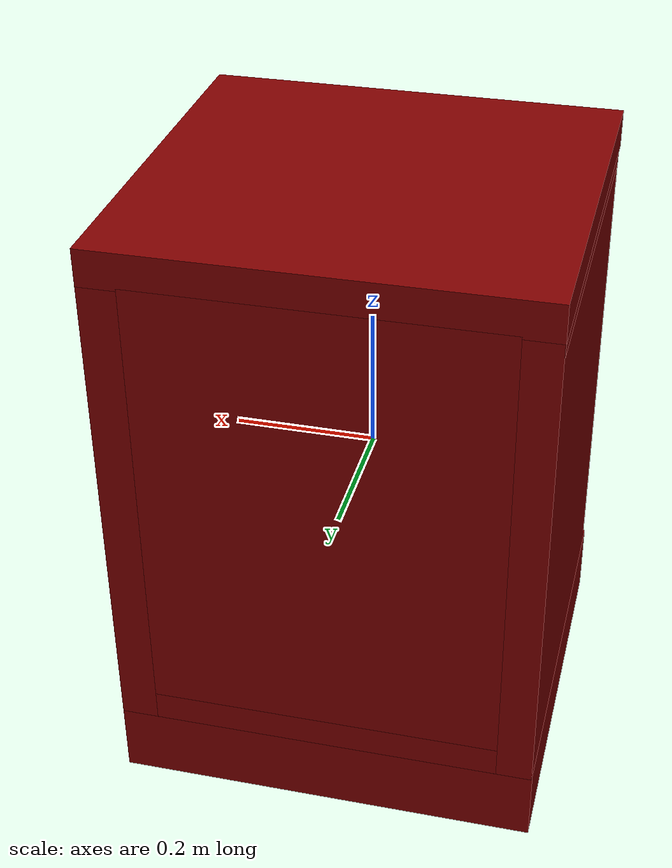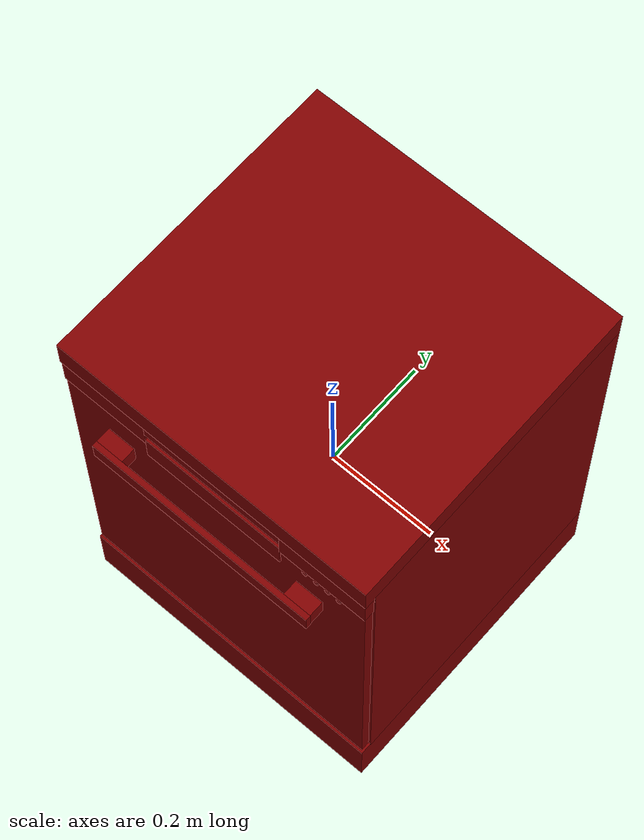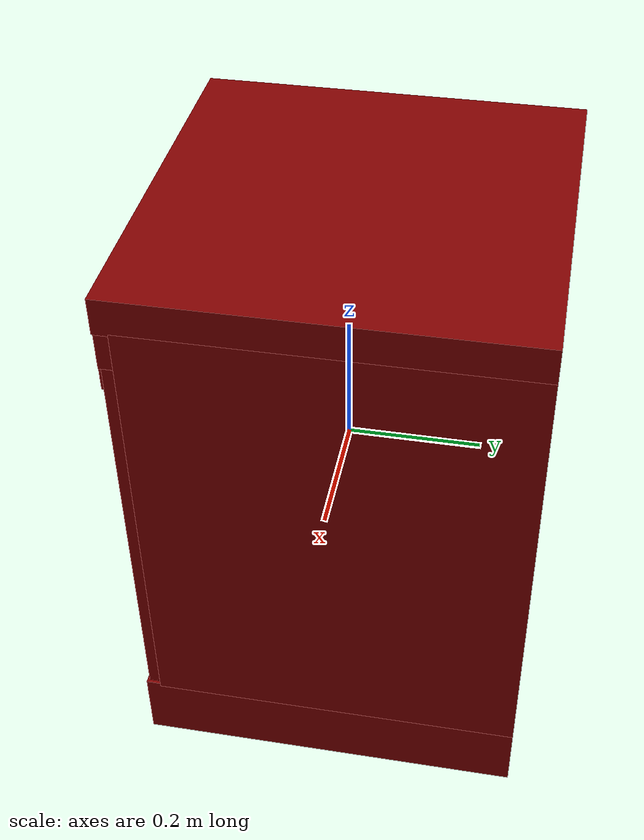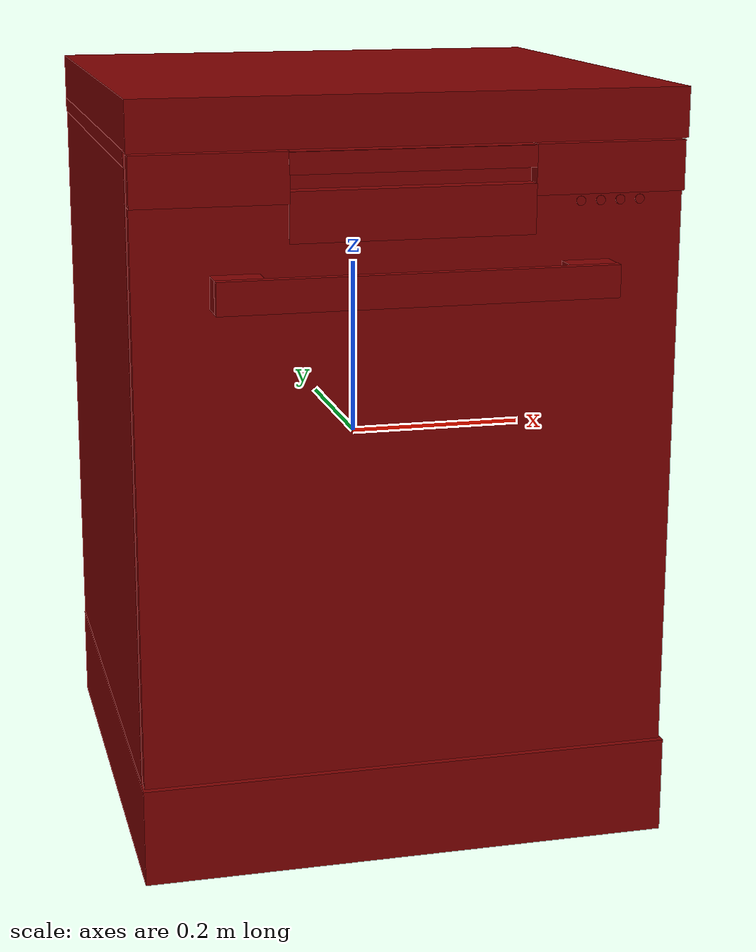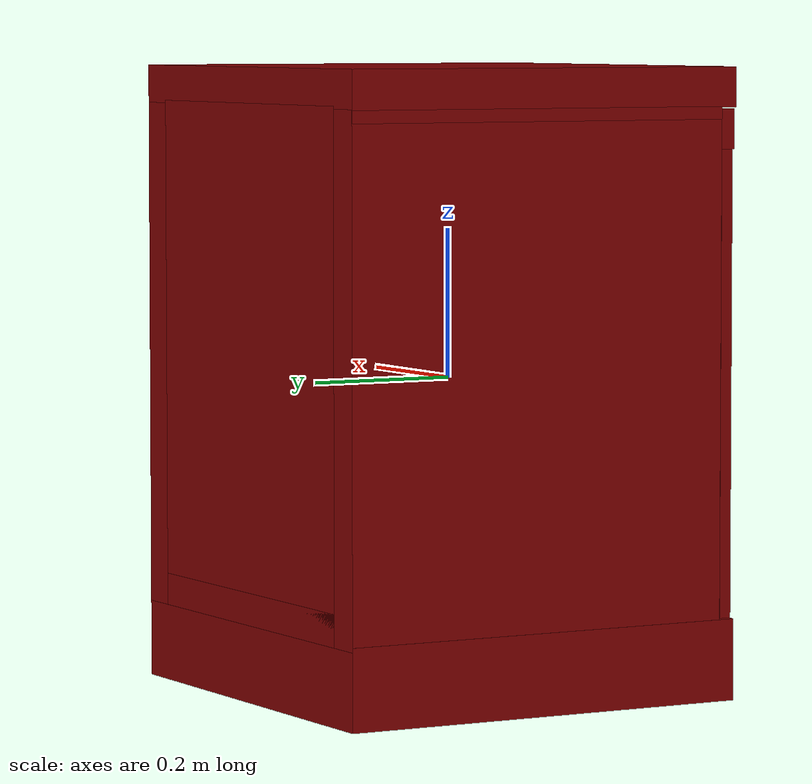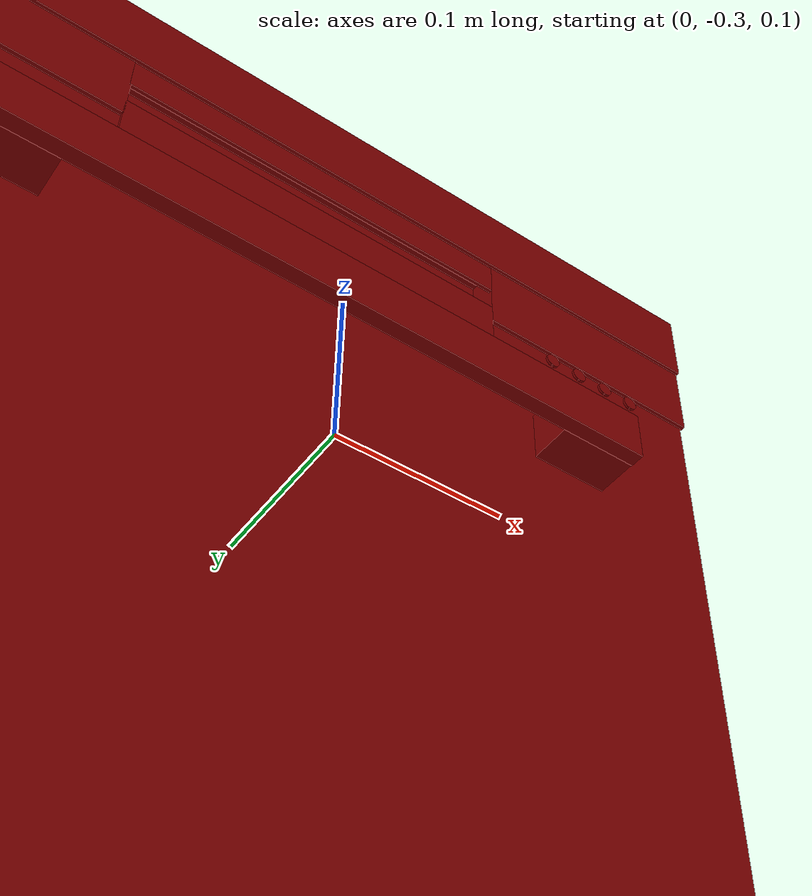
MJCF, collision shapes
<mujoco model="model">
  <compiler angle="radian"/>
  <asset>
    <mesh file="visuals/Body001.obj" name="Body001_vis"/>
    <mesh file="visuals/Button001.obj" name="Button001_vis"/>
    <mesh file="visuals/Button002.obj" name="Button002_vis"/>
    <mesh file="visuals/Button003.obj" name="Button003_vis"/>
    <mesh file="visuals/Button004.obj" name="Button004_vis"/>
    <mesh file="visuals/Container001.obj" name="Container001_vis"/>
    <mesh file="visuals/Container002.obj" name="Container002_vis"/>
    <mesh file="visuals/Door001.obj" name="Door001_vis"/>
    <texture file="visuals/T_BC001.png" name="Body001_material" type="2d"/>
    <material name="Body001_material" rgba="1 1 1 1.0" texture="Body001_material" shininess="1" specular="1"/>
    <texture file="visuals/T_BC001.png" name="Container001_material" type="2d"/>
    <material name="Container001_material" rgba="1 1 1 1.0" texture="Container001_material" shininess="0.4472135901451111" specular="0.3103448502657381"/>
    <texture file="visuals/T_BC001.png" name="Container002_material" type="2d"/>
    <material name="Container002_material" rgba="1 1 1 1.0" texture="Container002_material" shininess="0.4472135901451111" specular="0.3103448502657381"/>
    <texture file="visuals/T_BC001.png" name="Door001_material" type="2d"/>
    <material name="Door001_material" rgba="1 1 1 1.0" texture="Door001_material" shininess="0.4472135901451111" specular="0.3103448502657381"/>
    <texture file="visuals/T_BC001.png" name="Button001_material" type="2d"/>
    <material name="Button001_material" rgba="1 1 1 1.0" texture="Button001_material" shininess="0.4472135901451111" specular="0.3103448502657381"/>
    <texture file="visuals/T_BC001.png" name="Button002_material" type="2d"/>
    <material name="Button002_material" rgba="1 1 1 1.0" texture="Button002_material" shininess="0.4472135901451111" specular="0.3103448502657381"/>
    <texture file="visuals/T_BC001.png" name="Button003_material" type="2d"/>
    <material name="Button003_material" rgba="1 1 1 1.0" texture="Button003_material" shininess="0.4472135901451111" specular="0.3103448502657381"/>
    <texture file="visuals/T_BC001.png" name="Button004_material" type="2d"/>
    <material name="Button004_material" rgba="1 1 1 1.0" texture="Button004_material" shininess="0.4472135901451111" specular="0.3103448502657381"/>
  </asset>
  <default>
    <default class="visual">
      <geom conaffinity="0" contype="0" group="1" type="mesh"/>
    </default>
    <default class="collision">
      <geom group="0" rgba="0.5 0 0 0.5"/>
    </default>
    <default class="spawn">
      <geom group="0" rgba="1 1 1 0.5" contype="0" conaffinity="0"/>
      <site group="0" rgba="1 1 1 0.5"/>
    </default>
    <default class="region">
      <geom group="1" conaffinity="0" contype="0" rgba="0 1 0 0"/>
    </default>
  </default>
  <worldbody>
    <body>
      <body name="object">
        <geom mesh="Body001_vis" type="mesh" solimp="0.998 0.998 0.001" solref="0.001 1" density="100" friction="0.95 0.3 0.1" class="visual" material="Body001_material"/>
        <geom class="collision" type="box" pos="0.000000 0.017014 -0.363076" size="0.29276856780052185 0.28435060381889343 0.0542173869907856" quat="1.0 0.0 0.0 0.0"/>
        <geom class="collision" type="box" pos="0.000000 0.017014 0.390867" size="0.29276856780052185 0.28435060381889343 0.026425588876008987" quat="1.0 0.0 0.0 0.0"/>
        <geom class="collision" type="box" pos="-0.265766 0.027711 0.025961" size="0.026233678683638573 0.2736540138721466 0.34079235792160034" quat="1.0 0.0 0.0 0.0"/>
        <geom class="collision" type="box" pos="0.266535 0.027711 0.025961" size="0.026233678683638573 0.2736540138721466 0.34079235792160034" quat="1.0 0.0 0.0 0.0"/>
        <geom class="collision" type="box" pos="-0.000812 0.256740 0.027727" size="0.24205000698566437 0.044625505805015564 0.34251588582992554" quat="1.0 0.0 0.0 0.0"/>
        <geom class="collision" type="box" pos="-0.000812 0.035107 -0.293301" size="0.24205000698566437 0.2662585377693176 0.0214882493019104" quat="1.0 0.0 0.0 0.0"/>
        <geom class="collision" type="box" pos="0.000000 0.027703 0.357442" size="0.29276856780052185 0.2736617624759674 0.008320099674165249" quat="1.0 0.0 0.0 0.0"/>
        <body name="Container001">
          <joint axis="0.0 -1.0 0.0" pos="-0.001244 0.006970 0.179501" limited="true" name="Container001_joint" range="0.0 0.35" type="slide" damping="1" frictionloss="1" armature=".01" stiffness="0.05"/>
          <geom mesh="Container001_vis" type="mesh" solimp="0.998 0.998 0.001" solref="0.001 1" density="100" friction="0.95 0.3 0.1" class="visual" material="Container001_material"/>
          <geom class="collision" type="box" pos="0.224976 0.005477 0.188582" size="0.004241365939378738 0.15936516225337982 0.010732275433838367" quat="2.7976489036518615e-07 -0.7679279446601868 1.4729276642810873e-07 0.6405362486839294"/>
          <geom class="collision" type="box" pos="-0.215092 0.005477 0.176434" size="0.004241365939378738 0.15936516225337982 0.010732275433838367" quat="1.0 0.0 0.0 0.0"/>
          <geom class="collision" type="box" pos="0.213339 0.005477 0.176434" size="0.004241365939378738 0.15936516225337982 0.010732275433838367" quat="3.1391647326017846e-07 1.0 0.0 0.0"/>
          <geom class="collision" type="box" pos="-0.001793 0.003031 0.168570" size="0.21767190098762512 0.16181063652038574 0.002867854433134198" quat="1.0 0.0 0.0 0.0"/>
          <geom class="collision" type="box" pos="-0.226729 0.005477 0.188582" size="0.004241365939378738 0.15936516225337982 0.010732275433838367" quat="0.7679279446601868 3.393662846400136e-13 -0.6405362486839294 -8.606166090885381e-08"/>
        </body>
        <body name="Container002">
          <joint axis="0.0 -1.0 0.0" pos="-0.001244 0.006973 -0.084117" limited="true" name="Container002_joint" range="0.0 0.35" type="slide" damping="1" frictionloss="1" armature=".01" stiffness="0.05"/>
          <geom mesh="Container002_vis" type="mesh" solimp="0.998 0.998 0.001" solref="0.001 1" density="100" friction="0.95 0.3 0.1" class="visual" material="Container002_material"/>
          <geom class="collision" type="box" pos="-0.226729 0.005477 -0.075300" size="0.004241365939378738 0.15936516225337982 0.010732275433838367" quat="0.7679279446601868 3.393662846400136e-13 -0.6405362486839294 -8.606166090885381e-08"/>
          <geom class="collision" type="box" pos="-0.001793 0.003031 -0.095165" size="0.21767190098762512 0.16181063652038574 0.003015433205291629" quat="1.0 0.0 0.0 0.0"/>
          <geom class="collision" type="box" pos="0.213339 0.005477 -0.087448" size="0.004241365939378738 0.15936516225337982 0.010732275433838367" quat="3.1391647326017846e-07 1.0 0.0 0.0"/>
          <geom class="collision" type="box" pos="-0.215092 0.005477 -0.087448" size="0.004241365939378738 0.15936516225337982 0.010732275433838367" quat="1.0 0.0 0.0 0.0"/>
          <geom class="collision" type="box" pos="0.224976 0.005477 -0.075300" size="0.004241365939378738 0.15936516225337982 0.010732275433838367" quat="2.7976489036518615e-07 -0.7679279446601868 1.4729276642810873e-07 0.6405362486839294"/>
        </body>
        <body name="Door001">
          <joint axis="1.0 0.0 0.0" pos="-0.000676 -0.266304 -0.307498" limited="true" name="Door001_joint" range="0.0 0.5235987755982988" type="hinge" damping="1" frictionloss="1" armature=".01" stiffness="0.05"/>
          <geom mesh="Door001_vis" type="mesh" solimp="0.998 0.998 0.001" solref="0.001 1" density="100" friction="0.95 0.3 0.1" class="visual" material="Door001_material"/>
          <geom class="collision" type="box" pos="-0.001010 -0.255021 0.001199" size="0.29008519649505615 0.008283094502985477 0.30862024426460266" quat="1.0 0.0 0.0 0.0"/>
          <geom class="collision" type="box" pos="-0.000368 -0.256441 0.360442" size="0.1296575516462326 0.009703303687274456 0.001561103155836463" quat="1.0 0.0 0.0 0.0"/>
          <geom class="collision" type="box" pos="-0.210189 -0.256441 0.336095" size="0.08090686798095703 0.009703303687274456 0.026352658867836" quat="1.0 0.0 0.0 0.0"/>
          <geom class="collision" type="box" pos="0.209898 -0.256441 0.336095" size="0.08090686798095703 0.009703303687274456 0.026352658867836" quat="1.0 0.0 0.0 0.0"/>
          <geom class="collision" type="box" pos="-0.000368 -0.265071 0.350226" size="0.1296575516462326 0.001297959010116756 0.011400402523577213" quat="1.0 0.0 0.0 0.0"/>
          <geom class="collision" type="box" pos="-0.000368 -0.256441 0.295974" size="0.1296575516462326 0.009703303687274456 0.026352658867836" quat="1.0 0.0 0.0 0.0"/>
          <geom class="collision" type="box" pos="-0.000368 -0.246004 0.340488" size="0.1296575516462326 0.001297959010116756 0.02113850601017475" quat="1.0 0.0 0.0 0.0"/>
          <geom class="collision" type="box" pos="-0.000847 -0.296445 0.223678" size="0.2109241485595703 0.004919996950775385 0.017236430197954178" quat="1.0 0.0 0.0 0.0"/>
          <geom class="collision" type="box" pos="-0.186309 -0.278010 0.223678" size="0.025461390614509583 0.013577926903963089 0.017236430197954178" quat="1.0 0.0 0.0 0.0"/>
          <geom class="collision" type="box" pos="0.184081 -0.278010 0.223678" size="0.025461390614509583 0.013577926903963089 0.017236430197954178" quat="1.0 0.0 0.0 0.0"/>
          <body name="Button001">
            <joint axis="0.0 1.0 0.0" pos="0.177289 -0.265577 0.302719" limited="true" name="Button001_joint" range="0.0 0.001" type="slide" damping="1" frictionloss="1" armature=".01" stiffness="0.05"/>
            <geom mesh="Button001_vis" type="mesh" solimp="0.998 0.998 0.001" solref="0.001 1" density="100" friction="0.95 0.3 0.1" class="visual" material="Button001_material"/>
            <geom class="collision" type="cylinder" pos="0.177204 -0.265726 0.302777" size="0.004981056787073612 0.0007467127870768309" quat="0.7071067094802856 0.70710688829422 0.0 0.0"/>
          </body>
          <body name="Button002">
            <joint axis="0.0 1.0 0.0" pos="0.198675 -0.265575 0.302737" limited="true" name="Button002_joint" range="0.0 0.001" type="slide" damping="1" frictionloss="1" armature=".01" stiffness="0.05"/>
            <geom mesh="Button002_vis" type="mesh" solimp="0.998 0.998 0.001" solref="0.001 1" density="100" friction="0.95 0.3 0.1" class="visual" material="Button002_material"/>
            <geom class="collision" type="cylinder" pos="0.198766 -0.265726 0.302777" size="0.004981056787073612 0.0007467127870768309" quat="0.7071067094802856 0.70710688829422 0.0 0.0"/>
          </body>
          <body name="Button003">
            <joint axis="0.0 1.0 0.0" pos="0.220058 -0.265577 0.302710" limited="true" name="Button003_joint" range="0.0 0.001" type="slide" damping="1" frictionloss="1" armature=".01" stiffness="0.05"/>
            <geom mesh="Button003_vis" type="mesh" solimp="0.998 0.998 0.001" solref="0.001 1" density="100" friction="0.95 0.3 0.1" class="visual" material="Button003_material"/>
            <geom class="collision" type="cylinder" pos="0.220143 -0.265726 0.302777" size="0.004981056787073612 0.0007467127870768309" quat="0.7071067094802856 0.70710688829422 0.0 0.0"/>
          </body>
          <body name="Button004">
            <joint axis="0.0 1.0 0.0" pos="0.241451 -0.265577 0.302711" limited="true" name="Button004_joint" range="0.0 0.001" type="slide" damping="1" frictionloss="1" armature=".01" stiffness="0.05"/>
            <geom mesh="Button004_vis" type="mesh" solimp="0.998 0.998 0.001" solref="0.001 1" density="100" friction="0.95 0.3 0.1" class="visual" material="Button004_material"/>
            <geom class="collision" type="cylinder" pos="0.241519 -0.265726 0.302777" size="0.004981056787073612 0.0007467127870768309" quat="0.7071067094802856 0.70710688829422 0.0 0.0"/>
          </body>
        </body>
        <geom class="region" name="reg_main" type="box" pos="-0.0006714999999999915 0.016553000000000012 2.849999999998687e-05" size="0.2912265 0.28381599999999996 0.4138095"/>
        <geom class="region" name="reg_int" type="box" pos="-0.0013330000000000009 -0.005077499999999999 0.025401499999999994" size="0.238398 0.21624149999999998 0.2952675"/>
      </body>
    </body>
  </worldbody>
  <actuator>
    <motor name="Container001_joint_actuator" joint="Container001_joint" gear="10"/>
    <motor name="Container002_joint_actuator" joint="Container002_joint" gear="10"/>
    <motor name="Door001_joint_actuator" joint="Door001_joint" gear="50"/>
    <motor name="Button001_joint_actuator" joint="Button001_joint" gear="0.5"/>
    <motor name="Button002_joint_actuator" joint="Button002_joint" gear="0.5"/>
    <motor name="Button003_joint_actuator" joint="Button003_joint" gear="0.5"/>
    <motor name="Button004_joint_actuator" joint="Button004_joint" gear="0.5"/>
  </actuator>
</mujoco>
